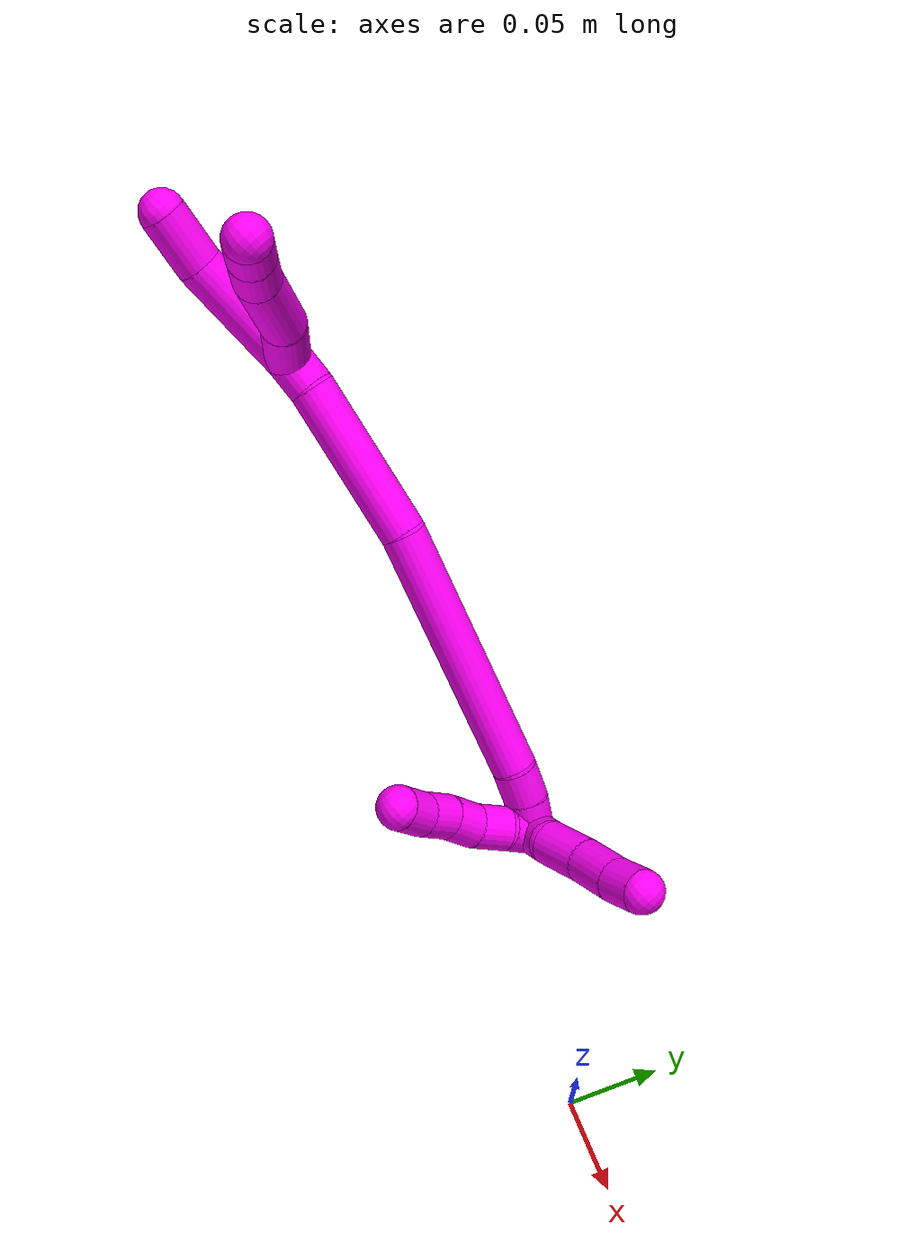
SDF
<sdf version="1.7">
 <world name="default">
  <model name="10">
   <static>0</static>
   <link name="10">
    <collision name="collision-cylinder-e_1_2_8">
     <pose>0.000802 0.022367 0.005993 -1.30899 0.034627 -0.026571</pose>
     <geometry><cylinder><radius>0.0125</radius><length>0.04634</length></cylinder></geometry>
     <surface>
      <friction><ode><mu>1.16</mu><mu2>1.16</mu2><slip1>0</slip1><slip2>0</slip2></ode></friction>
      <contact><ode><kp>1e+06</kp><kd>1</kd><max_vel>0</max_vel><min_depth>0.001</min_depth></ode></contact>
     </surface>
    </collision>
    <visual name="visual-cylinder-e_1_2_8">
     <pose>0.000802 0.022367 0.005993 -1.30899 0.034627 -0.026571</pose>
     <geometry><cylinder><radius>0.0125</radius><length>0.04634</length></cylinder></geometry>
     <material><ambient>1 0 0.964706 1</ambient></material>
    </visual>
    <collision name="collision-cylinder-e_2_8_9">
     <pose>0.005603 0.068957 0.022497 -1.1614 0.15029 -0.098721</pose>
     <geometry><cylinder><radius>0.0125</radius><length>0.053412</length></cylinder></geometry>
     <surface>
      <friction><ode><mu>1.16</mu><mu2>1.16</mu2><slip1>0</slip1><slip2>0</slip2></ode></friction>
      <contact><ode><kp>1e+06</kp><kd>1</kd><max_vel>0</max_vel><min_depth>0.001</min_depth></ode></contact>
     </surface>
    </collision>
    <visual name="visual-cylinder-e_2_8_9">
     <pose>0.005603 0.068957 0.022497 -1.1614 0.15029 -0.098721</pose>
     <geometry><cylinder><radius>0.0125</radius><length>0.053412</length></cylinder></geometry>
     <material><ambient>1 0 0.964706 1</ambient></material>
    </visual>
    <collision name="collision-cylinder-e_3_9_10">
     <pose>0.010865 0.106729 0.036566 -1.31397 0.089932 -0.069383</pose>
     <geometry><cylinder><radius>0.0125</radius><length>0.028131</length></cylinder></geometry>
     <surface>
      <friction><ode><mu>1.16</mu><mu2>1.16</mu2><slip1>0</slip1><slip2>0</slip2></ode></friction>
      <contact><ode><kp>1e+06</kp><kd>1</kd><max_vel>0</max_vel><min_depth>0.001</min_depth></ode></contact>
     </surface>
    </collision>
    <visual name="visual-cylinder-e_3_9_10">
     <pose>0.010865 0.106729 0.036566 -1.31397 0.089932 -0.069383</pose>
     <geometry><cylinder><radius>0.0125</radius><length>0.028131</length></cylinder></geometry>
     <material><ambient>1 0 0.964706 1</ambient></material>
    </visual>
    <collision name="collision-cylinder-e_4_10_6">
     <pose>0.013056 0.13098 0.042751 -1.3301 0.084016 -0.065903</pose>
     <geometry><cylinder><radius>0.0125</radius><length>0.022117</length></cylinder></geometry>
     <surface>
      <friction><ode><mu>1.16</mu><mu2>1.16</mu2><slip1>0</slip1><slip2>0</slip2></ode></friction>
      <contact><ode><kp>1e+06</kp><kd>1</kd><max_vel>0</max_vel><min_depth>0.001</min_depth></ode></contact>
     </surface>
    </collision>
    <visual name="visual-cylinder-e_4_10_6">
     <pose>0.013056 0.13098 0.042751 -1.3301 0.084016 -0.065903</pose>
     <geometry><cylinder><radius>0.0125</radius><length>0.022117</length></cylinder></geometry>
     <material><ambient>1 0 0.964706 1</ambient></material>
    </visual>
    <collision name="collision-cylinder-e_1_2_11">
     <pose>0.00258 0.00802 0.032405 -0.242624 0.077141 -0.009409</pose>
     <geometry><cylinder><radius>0.0125</radius><length>0.066964</length></cylinder></geometry>
     <surface>
      <friction><ode><mu>1.16</mu><mu2>1.16</mu2><slip1>0</slip1><slip2>0</slip2></ode></friction>
      <contact><ode><kp>1e+06</kp><kd>1</kd><max_vel>0</max_vel><min_depth>0.001</min_depth></ode></contact>
     </surface>
    </collision>
    <visual name="visual-cylinder-e_1_2_11">
     <pose>0.00258 0.00802 0.032405 -0.242624 0.077141 -0.009409</pose>
     <geometry><cylinder><radius>0.0125</radius><length>0.066964</length></cylinder></geometry>
     <material><ambient>1 0 0.964706 1</ambient></material>
    </visual>
    <collision name="collision-cylinder-e_2_11_5">
     <pose>0.004732 0.022361 0.080064 -0.392786 -0.025937 0.005161</pose>
     <geometry><cylinder><radius>0.0125</radius><length>0.033036</length></cylinder></geometry>
     <surface>
      <friction><ode><mu>1.16</mu><mu2>1.16</mu2><slip1>0</slip1><slip2>0</slip2></ode></friction>
      <contact><ode><kp>1e+06</kp><kd>1</kd><max_vel>0</max_vel><min_depth>0.001</min_depth></ode></contact>
     </surface>
    </collision>
    <visual name="visual-cylinder-e_2_11_5">
     <pose>0.004732 0.022361 0.080064 -0.392786 -0.025937 0.005161</pose>
     <geometry><cylinder><radius>0.0125</radius><length>0.033036</length></cylinder></geometry>
     <material><ambient>1 0 0.964706 1</ambient></material>
    </visual>
    <collision name="collision-cylinder-e_1_2_12">
     <pose>0.001084 0.001009 -0.010205 -3.04302 0.105337 -1.63727</pose>
     <geometry><cylinder><radius>0.0125</radius><length>0.020625</length></cylinder></geometry>
     <surface>
      <friction><ode><mu>1.16</mu><mu2>1.16</mu2><slip1>0</slip1><slip2>0</slip2></ode></friction>
      <contact><ode><kp>1e+06</kp><kd>1</kd><max_vel>0</max_vel><min_depth>0.001</min_depth></ode></contact>
     </surface>
    </collision>
    <visual name="visual-cylinder-e_1_2_12">
     <pose>0.001084 0.001009 -0.010205 -3.04302 0.105337 -1.63727</pose>
     <geometry><cylinder><radius>0.0125</radius><length>0.020625</length></cylinder></geometry>
     <material><ambient>1 0 0.964706 1</ambient></material>
    </visual>
    <collision name="collision-cylinder-e_2_12_13">
     <pose>0.010008 -0.000977 -0.064698 3.07406 0.174814 2.40573</pose>
     <geometry><cylinder><radius>0.0125</radius><length>0.090152</length></cylinder></geometry>
     <surface>
      <friction><ode><mu>1.16</mu><mu2>1.16</mu2><slip1>0</slip1><slip2>0</slip2></ode></friction>
      <contact><ode><kp>1e+06</kp><kd>1</kd><max_vel>0</max_vel><min_depth>0.001</min_depth></ode></contact>
     </surface>
    </collision>
    <visual name="visual-cylinder-e_2_12_13">
     <pose>0.010008 -0.000977 -0.064698 3.07406 0.174814 2.40573</pose>
     <geometry><cylinder><radius>0.0125</radius><length>0.090152</length></cylinder></geometry>
     <material><ambient>1 0 0.964706 1</ambient></material>
    </visual>
    <collision name="collision-cylinder-e_3_13_14">
     <pose>0.035984 -0.02036 -0.177624 2.90723 0.251559 1.64225</pose>
     <geometry><cylinder><radius>0.0125</radius><length>0.14572</length></cylinder></geometry>
     <surface>
      <friction><ode><mu>1.16</mu><mu2>1.16</mu2><slip1>0</slip1><slip2>0</slip2></ode></friction>
      <contact><ode><kp>1e+06</kp><kd>1</kd><max_vel>0</max_vel><min_depth>0.001</min_depth></ode></contact>
     </surface>
    </collision>
    <visual name="visual-cylinder-e_3_13_14">
     <pose>0.035984 -0.02036 -0.177624 2.90723 0.251559 1.64225</pose>
     <geometry><cylinder><radius>0.0125</radius><length>0.14572</length></cylinder></geometry>
     <material><ambient>1 0 0.964706 1</ambient></material>
    </visual>
    <collision name="collision-cylinder-e_4_14_15">
     <pose>0.056661 -0.041078 -0.255298 2.69465 0.248362 1.00452</pose>
     <geometry><cylinder><radius>0.0125</radius><length>0.020675</length></cylinder></geometry>
     <surface>
      <friction><ode><mu>1.16</mu><mu2>1.16</mu2><slip1>0</slip1><slip2>0</slip2></ode></friction>
      <contact><ode><kp>1e+06</kp><kd>1</kd><max_vel>0</max_vel><min_depth>0.001</min_depth></ode></contact>
     </surface>
    </collision>
    <visual name="visual-cylinder-e_4_14_15">
     <pose>0.056661 -0.041078 -0.255298 2.69465 0.248362 1.00452</pose>
     <geometry><cylinder><radius>0.0125</radius><length>0.020675</length></cylinder></geometry>
     <material><ambient>1 0 0.964706 1</ambient></material>
    </visual>
    <collision name="collision-cylinder-e_5_15_1">
     <pose>0.063445 -0.050462 -0.273648 2.64452 0.380851 1.29918</pose>
     <geometry><cylinder><radius>0.0125</radius><length>0.022828</length></cylinder></geometry>
     <surface>
      <friction><ode><mu>1.16</mu><mu2>1.16</mu2><slip1>0</slip1><slip2>0</slip2></ode></friction>
      <contact><ode><kp>1e+06</kp><kd>1</kd><max_vel>0</max_vel><min_depth>0.001</min_depth></ode></contact>
     </surface>
    </collision>
    <visual name="visual-cylinder-e_5_15_1">
     <pose>0.063445 -0.050462 -0.273648 2.64452 0.380851 1.29918</pose>
     <geometry><cylinder><radius>0.0125</radius><length>0.022828</length></cylinder></geometry>
     <material><ambient>1 0 0.964706 1</ambient></material>
    </visual>
    <collision name="collision-cylinder-e_1_1_16">
     <pose>0.073564 -0.051361 -0.276018 -0.539092 0.628107 -0.178987</pose>
     <geometry><cylinder><radius>0.0125</radius><length>0.02</length></cylinder></geometry>
     <surface>
      <friction><ode><mu>1.16</mu><mu2>1.16</mu2><slip1>0</slip1><slip2>0</slip2></ode></friction>
      <contact><ode><kp>1e+06</kp><kd>1</kd><max_vel>0</max_vel><min_depth>0.001</min_depth></ode></contact>
     </surface>
    </collision>
    <visual name="visual-cylinder-e_1_1_16">
     <pose>0.073564 -0.051361 -0.276018 -0.539092 0.628107 -0.178987</pose>
     <geometry><cylinder><radius>0.0125</radius><length>0.02</length></cylinder></geometry>
     <material><ambient>1 0 0.964706 1</ambient></material>
    </visual>
    <collision name="collision-cylinder-e_2_16_17">
     <pose>0.085851 -0.044912 -0.26175 -0.303712 0.695858 -0.110892</pose>
     <geometry><cylinder><radius>0.0125</radius><length>0.02</length></cylinder></geometry>
     <surface>
      <friction><ode><mu>1.16</mu><mu2>1.16</mu2><slip1>0</slip1><slip2>0</slip2></ode></friction>
      <contact><ode><kp>1e+06</kp><kd>1</kd><max_vel>0</max_vel><min_depth>0.001</min_depth></ode></contact>
     </surface>
    </collision>
    <visual name="visual-cylinder-e_2_16_17">
     <pose>0.085851 -0.044912 -0.26175 -0.303712 0.695858 -0.110892</pose>
     <geometry><cylinder><radius>0.0125</radius><length>0.02</length></cylinder></geometry>
     <material><ambient>1 0 0.964706 1</ambient></material>
    </visual>
    <collision name="collision-cylinder-e_3_17_18">
     <pose>0.096636 -0.038157 -0.246618 -0.518857 0.45283 -0.12213</pose>
     <geometry><cylinder><radius>0.0125</radius><length>0.02</length></cylinder></geometry>
     <surface>
      <friction><ode><mu>1.16</mu><mu2>1.16</mu2><slip1>0</slip1><slip2>0</slip2></ode></friction>
      <contact><ode><kp>1e+06</kp><kd>1</kd><max_vel>0</max_vel><min_depth>0.001</min_depth></ode></contact>
     </surface>
    </collision>
    <visual name="visual-cylinder-e_3_17_18">
     <pose>0.096636 -0.038157 -0.246618 -0.518857 0.45283 -0.12213</pose>
     <geometry><cylinder><radius>0.0125</radius><length>0.02</length></cylinder></geometry>
     <material><ambient>1 0 0.964706 1</ambient></material>
    </visual>
    <collision name="collision-cylinder-e_4_18_19">
     <pose>0.106606 -0.028436 -0.232405 -0.687809 0.593736 -0.218243</pose>
     <geometry><cylinder><radius>0.0125</radius><length>0.02</length></cylinder></geometry>
     <surface>
      <friction><ode><mu>1.16</mu><mu2>1.16</mu2><slip1>0</slip1><slip2>0</slip2></ode></friction>
      <contact><ode><kp>1e+06</kp><kd>1</kd><max_vel>0</max_vel><min_depth>0.001</min_depth></ode></contact>
     </surface>
    </collision>
    <visual name="visual-cylinder-e_4_18_19">
     <pose>0.106606 -0.028436 -0.232405 -0.687809 0.593736 -0.218243</pose>
     <geometry><cylinder><radius>0.0125</radius><length>0.02</length></cylinder></geometry>
     <material><ambient>1 0 0.964706 1</ambient></material>
    </visual>
    <collision name="collision-cylinder-e_5_19_4">
     <pose>0.116408 -0.01674 -0.219606 -0.78839 0.434281 -0.183028</pose>
     <geometry><cylinder><radius>0.0125</radius><length>0.02</length></cylinder></geometry>
     <surface>
      <friction><ode><mu>1.16</mu><mu2>1.16</mu2><slip1>0</slip1><slip2>0</slip2></ode></friction>
      <contact><ode><kp>1e+06</kp><kd>1</kd><max_vel>0</max_vel><min_depth>0.001</min_depth></ode></contact>
     </surface>
    </collision>
    <visual name="visual-cylinder-e_5_19_4">
     <pose>0.116408 -0.01674 -0.219606 -0.78839 0.434281 -0.183028</pose>
     <geometry><cylinder><radius>0.0125</radius><length>0.02</length></cylinder></geometry>
     <material><ambient>1 0 0.964706 1</ambient></material>
    </visual>
    <collision name="collision-cylinder-e_1_1_20">
     <pose>0.068351 -0.045066 -0.286279 -1.87823 0.060434 -0.082572</pose>
     <geometry><cylinder><radius>0.0125</radius><length>0.021965</length></cylinder></geometry>
     <surface>
      <friction><ode><mu>1.16</mu><mu2>1.16</mu2><slip1>0</slip1><slip2>0</slip2></ode></friction>
      <contact><ode><kp>1e+06</kp><kd>1</kd><max_vel>0</max_vel><min_depth>0.001</min_depth></ode></contact>
     </surface>
    </collision>
    <visual name="visual-cylinder-e_1_1_20">
     <pose>0.068351 -0.045066 -0.286279 -1.87823 0.060434 -0.082572</pose>
     <geometry><cylinder><radius>0.0125</radius><length>0.021965</length></cylinder></geometry>
     <material><ambient>1 0 0.964706 1</ambient></material>
    </visual>
    <collision name="collision-cylinder-e_2_20_21">
     <pose>0.067635 -0.022752 -0.297813 -2.17645 -0.095262 0.181477</pose>
     <geometry><cylinder><radius>0.0125</radius><length>0.028998</length></cylinder></geometry>
     <surface>
      <friction><ode><mu>1.16</mu><mu2>1.16</mu2><slip1>0</slip1><slip2>0</slip2></ode></friction>
      <contact><ode><kp>1e+06</kp><kd>1</kd><max_vel>0</max_vel><min_depth>0.001</min_depth></ode></contact>
     </surface>
    </collision>
    <visual name="visual-cylinder-e_2_20_21">
     <pose>0.067635 -0.022752 -0.297813 -2.17645 -0.095262 0.181477</pose>
     <geometry><cylinder><radius>0.0125</radius><length>0.028998</length></cylinder></geometry>
     <material><ambient>1 0 0.964706 1</ambient></material>
    </visual>
    <collision name="collision-cylinder-e_3_21_22">
     <pose>0.066206 0.00111 -0.31284 -2.0871 -0.003667 0.006298</pose>
     <geometry><cylinder><radius>0.0125</radius><length>0.027589</length></cylinder></geometry>
     <surface>
      <friction><ode><mu>1.16</mu><mu2>1.16</mu2><slip1>0</slip1><slip2>0</slip2></ode></friction>
      <contact><ode><kp>1e+06</kp><kd>1</kd><max_vel>0</max_vel><min_depth>0.001</min_depth></ode></contact>
     </surface>
    </collision>
    <visual name="visual-cylinder-e_3_21_22">
     <pose>0.066206 0.00111 -0.31284 -2.0871 -0.003667 0.006298</pose>
     <geometry><cylinder><radius>0.0125</radius><length>0.027589</length></cylinder></geometry>
     <material><ambient>1 0 0.964706 1</ambient></material>
    </visual>
    <collision name="collision-cylinder-e_4_22_3">
     <pose>0.065254 0.022691 -0.324375 -2.02886 -0.084128 0.135149</pose>
     <geometry><cylinder><radius>0.0125</radius><length>0.021449</length></cylinder></geometry>
     <surface>
      <friction><ode><mu>1.16</mu><mu2>1.16</mu2><slip1>0</slip1><slip2>0</slip2></ode></friction>
      <contact><ode><kp>1e+06</kp><kd>1</kd><max_vel>0</max_vel><min_depth>0.001</min_depth></ode></contact>
     </surface>
    </collision>
    <visual name="visual-cylinder-e_4_22_3">
     <pose>0.065254 0.022691 -0.324375 -2.02886 -0.084128 0.135149</pose>
     <geometry><cylinder><radius>0.0125</radius><length>0.021449</length></cylinder></geometry>
     <material><ambient>1 0 0.964706 1</ambient></material>
    </visual>
    <collision name="collision-sphere-3">
     <pose>0.064353 0.032276 -0.329101 0 -0 0</pose>
     <geometry><sphere><radius>0.0125</radius></sphere></geometry>
     <surface>
      <friction><ode><mu>1.16</mu><mu2>1.16</mu2><slip1>0</slip1><slip2>0</slip2></ode></friction>
      <contact><ode><kp>1e+06</kp><kd>1</kd><max_vel>0</max_vel><min_depth>0.001</min_depth></ode></contact>
     </surface>
    </collision>
    <visual name="visual-sphere-3">
     <pose>0.064353 0.032276 -0.329101 0 -0 0</pose>
     <geometry><sphere><radius>0.0125</radius></sphere></geometry>
     <material><ambient>1 0 0.964706 1</ambient></material>
    </visual>
    <collision name="collision-sphere-22">
     <pose>0.066155 0.013107 -0.31965 0 -0 0</pose>
     <geometry><sphere><radius>0.0125</radius></sphere></geometry>
     <surface>
      <friction><ode><mu>1.16</mu><mu2>1.16</mu2><slip1>0</slip1><slip2>0</slip2></ode></friction>
      <contact><ode><kp>1e+06</kp><kd>1</kd><max_vel>0</max_vel><min_depth>0.001</min_depth></ode></contact>
     </surface>
    </collision>
    <visual name="visual-sphere-22">
     <pose>0.066155 0.013107 -0.31965 0 -0 0</pose>
     <geometry><sphere><radius>0.0125</radius></sphere></geometry>
     <material><ambient>1 0 0.964706 1</ambient></material>
    </visual>
    <collision name="collision-sphere-21">
     <pose>0.066256 -0.010886 -0.30603 0 -0 0</pose>
     <geometry><sphere><radius>0.0125</radius></sphere></geometry>
     <surface>
      <friction><ode><mu>1.16</mu><mu2>1.16</mu2><slip1>0</slip1><slip2>0</slip2></ode></friction>
      <contact><ode><kp>1e+06</kp><kd>1</kd><max_vel>0</max_vel><min_depth>0.001</min_depth></ode></contact>
     </surface>
    </collision>
    <visual name="visual-sphere-21">
     <pose>0.066256 -0.010886 -0.30603 0 -0 0</pose>
     <geometry><sphere><radius>0.0125</radius></sphere></geometry>
     <material><ambient>1 0 0.964706 1</ambient></material>
    </visual>
    <collision name="collision-sphere-20">
     <pose>0.069014 -0.034617 -0.289597 0 -0 0</pose>
     <geometry><sphere><radius>0.0125</radius></sphere></geometry>
     <surface>
      <friction><ode><mu>1.16</mu><mu2>1.16</mu2><slip1>0</slip1><slip2>0</slip2></ode></friction>
      <contact><ode><kp>1e+06</kp><kd>1</kd><max_vel>0</max_vel><min_depth>0.001</min_depth></ode></contact>
     </surface>
    </collision>
    <visual name="visual-sphere-20">
     <pose>0.069014 -0.034617 -0.289597 0 -0 0</pose>
     <geometry><sphere><radius>0.0125</radius></sphere></geometry>
     <material><ambient>1 0 0.964706 1</ambient></material>
    </visual>
    <collision name="collision-sphere-4">
     <pose>0.120616 -0.010306 -0.21321 0 -0 0</pose>
     <geometry><sphere><radius>0.0125</radius></sphere></geometry>
     <surface>
      <friction><ode><mu>1.16</mu><mu2>1.16</mu2><slip1>0</slip1><slip2>0</slip2></ode></friction>
      <contact><ode><kp>1e+06</kp><kd>1</kd><max_vel>0</max_vel><min_depth>0.001</min_depth></ode></contact>
     </surface>
    </collision>
    <visual name="visual-sphere-4">
     <pose>0.120616 -0.010306 -0.21321 0 -0 0</pose>
     <geometry><sphere><radius>0.0125</radius></sphere></geometry>
     <material><ambient>1 0 0.964706 1</ambient></material>
    </visual>
    <collision name="collision-sphere-11">
     <pose>0.005161 0.01604 0.064809 0 -0 0</pose>
     <geometry><sphere><radius>0.0125</radius></sphere></geometry>
     <surface>
      <friction><ode><mu>1.16</mu><mu2>1.16</mu2><slip1>0</slip1><slip2>0</slip2></ode></friction>
      <contact><ode><kp>1e+06</kp><kd>1</kd><max_vel>0</max_vel><min_depth>0.001</min_depth></ode></contact>
     </surface>
    </collision>
    <visual name="visual-sphere-11">
     <pose>0.005161 0.01604 0.064809 0 -0 0</pose>
     <geometry><sphere><radius>0.0125</radius></sphere></geometry>
     <material><ambient>1 0 0.964706 1</ambient></material>
    </visual>
    <collision name="collision-sphere-6">
     <pose>0.013984 0.141682 0.045378 0 -0 0</pose>
     <geometry><sphere><radius>0.0125</radius></sphere></geometry>
     <surface>
      <friction><ode><mu>1.16</mu><mu2>1.16</mu2><slip1>0</slip1><slip2>0</slip2></ode></friction>
      <contact><ode><kp>1e+06</kp><kd>1</kd><max_vel>0</max_vel><min_depth>0.001</min_depth></ode></contact>
     </surface>
    </collision>
    <visual name="visual-sphere-6">
     <pose>0.013984 0.141682 0.045378 0 -0 0</pose>
     <geometry><sphere><radius>0.0125</radius></sphere></geometry>
     <material><ambient>1 0 0.964706 1</ambient></material>
    </visual>
    <collision name="collision-sphere-10">
     <pose>0.012128 0.120278 0.040125 0 -0 0</pose>
     <geometry><sphere><radius>0.0125</radius></sphere></geometry>
     <surface>
      <friction><ode><mu>1.16</mu><mu2>1.16</mu2><slip1>0</slip1><slip2>0</slip2></ode></friction>
      <contact><ode><kp>1e+06</kp><kd>1</kd><max_vel>0</max_vel><min_depth>0.001</min_depth></ode></contact>
     </surface>
    </collision>
    <visual name="visual-sphere-10">
     <pose>0.012128 0.120278 0.040125 0 -0 0</pose>
     <geometry><sphere><radius>0.0125</radius></sphere></geometry>
     <material><ambient>1 0 0.964706 1</ambient></material>
    </visual>
    <collision name="collision-sphere-9">
     <pose>0.009601 0.09318 0.033008 0 -0 0</pose>
     <geometry><sphere><radius>0.0125</radius></sphere></geometry>
     <surface>
      <friction><ode><mu>1.16</mu><mu2>1.16</mu2><slip1>0</slip1><slip2>0</slip2></ode></friction>
      <contact><ode><kp>1e+06</kp><kd>1</kd><max_vel>0</max_vel><min_depth>0.001</min_depth></ode></contact>
     </surface>
    </collision>
    <visual name="visual-sphere-9">
     <pose>0.009601 0.09318 0.033008 0 -0 0</pose>
     <geometry><sphere><radius>0.0125</radius></sphere></geometry>
     <material><ambient>1 0 0.964706 1</ambient></material>
    </visual>
    <collision name="collision-sphere-2">
     <geometry><sphere><radius>0.0125</radius></sphere></geometry>
     <surface>
      <friction><ode><mu>1.16</mu><mu2>1.16</mu2><slip1>0</slip1><slip2>0</slip2></ode></friction>
      <contact><ode><kp>1e+06</kp><kd>1</kd><max_vel>0</max_vel><min_depth>0.001</min_depth></ode></contact>
     </surface>
    </collision>
    <visual name="visual-sphere-2">
     <geometry><sphere><radius>0.0125</radius></sphere></geometry>
     <material><ambient>1 0 0.964706 1</ambient></material>
    </visual>
    <collision name="collision-sphere-19">
     <pose>0.1122 -0.023174 -0.226001 0 -0 0</pose>
     <geometry><sphere><radius>0.0125</radius></sphere></geometry>
     <surface>
      <friction><ode><mu>1.16</mu><mu2>1.16</mu2><slip1>0</slip1><slip2>0</slip2></ode></friction>
      <contact><ode><kp>1e+06</kp><kd>1</kd><max_vel>0</max_vel><min_depth>0.001</min_depth></ode></contact>
     </surface>
    </collision>
    <visual name="visual-sphere-19">
     <pose>0.1122 -0.023174 -0.226001 0 -0 0</pose>
     <geometry><sphere><radius>0.0125</radius></sphere></geometry>
     <material><ambient>1 0 0.964706 1</ambient></material>
    </visual>
    <collision name="collision-sphere-8">
     <pose>0.001604 0.044734 0.011987 0 -0 0</pose>
     <geometry><sphere><radius>0.0125</radius></sphere></geometry>
     <surface>
      <friction><ode><mu>1.16</mu><mu2>1.16</mu2><slip1>0</slip1><slip2>0</slip2></ode></friction>
      <contact><ode><kp>1e+06</kp><kd>1</kd><max_vel>0</max_vel><min_depth>0.001</min_depth></ode></contact>
     </surface>
    </collision>
    <visual name="visual-sphere-8">
     <pose>0.001604 0.044734 0.011987 0 -0 0</pose>
     <geometry><sphere><radius>0.0125</radius></sphere></geometry>
     <material><ambient>1 0 0.964706 1</ambient></material>
    </visual>
    <collision name="collision-sphere-5">
     <pose>0.004304 0.028681 0.095319 0 -0 0</pose>
     <geometry><sphere><radius>0.0125</radius></sphere></geometry>
     <surface>
      <friction><ode><mu>1.16</mu><mu2>1.16</mu2><slip1>0</slip1><slip2>0</slip2></ode></friction>
      <contact><ode><kp>1e+06</kp><kd>1</kd><max_vel>0</max_vel><min_depth>0.001</min_depth></ode></contact>
     </surface>
    </collision>
    <visual name="visual-sphere-5">
     <pose>0.004304 0.028681 0.095319 0 -0 0</pose>
     <geometry><sphere><radius>0.0125</radius></sphere></geometry>
     <material><ambient>1 0 0.964706 1</ambient></material>
    </visual>
    <collision name="collision-sphere-12">
     <pose>0.002169 0.002018 -0.020411 0 -0 0</pose>
     <geometry><sphere><radius>0.0125</radius></sphere></geometry>
     <surface>
      <friction><ode><mu>1.16</mu><mu2>1.16</mu2><slip1>0</slip1><slip2>0</slip2></ode></friction>
      <contact><ode><kp>1e+06</kp><kd>1</kd><max_vel>0</max_vel><min_depth>0.001</min_depth></ode></contact>
     </surface>
    </collision>
    <visual name="visual-sphere-12">
     <pose>0.002169 0.002018 -0.020411 0 -0 0</pose>
     <geometry><sphere><radius>0.0125</radius></sphere></geometry>
     <material><ambient>1 0 0.964706 1</ambient></material>
    </visual>
    <collision name="collision-sphere-13">
     <pose>0.017848 -0.003973 -0.108986 0 -0 0</pose>
     <geometry><sphere><radius>0.0125</radius></sphere></geometry>
     <surface>
      <friction><ode><mu>1.16</mu><mu2>1.16</mu2><slip1>0</slip1><slip2>0</slip2></ode></friction>
      <contact><ode><kp>1e+06</kp><kd>1</kd><max_vel>0</max_vel><min_depth>0.001</min_depth></ode></contact>
     </surface>
    </collision>
    <visual name="visual-sphere-13">
     <pose>0.017848 -0.003973 -0.108986 0 -0 0</pose>
     <geometry><sphere><radius>0.0125</radius></sphere></geometry>
     <material><ambient>1 0 0.964706 1</ambient></material>
    </visual>
    <collision name="collision-sphere-14">
     <pose>0.05412 -0.036747 -0.246262 0 -0 0</pose>
     <geometry><sphere><radius>0.0125</radius></sphere></geometry>
     <surface>
      <friction><ode><mu>1.16</mu><mu2>1.16</mu2><slip1>0</slip1><slip2>0</slip2></ode></friction>
      <contact><ode><kp>1e+06</kp><kd>1</kd><max_vel>0</max_vel><min_depth>0.001</min_depth></ode></contact>
     </surface>
    </collision>
    <visual name="visual-sphere-14">
     <pose>0.05412 -0.036747 -0.246262 0 -0 0</pose>
     <geometry><sphere><radius>0.0125</radius></sphere></geometry>
     <material><ambient>1 0 0.964706 1</ambient></material>
    </visual>
    <collision name="collision-sphere-15">
     <pose>0.059202 -0.045409 -0.264334 0 -0 0</pose>
     <geometry><sphere><radius>0.0125</radius></sphere></geometry>
     <surface>
      <friction><ode><mu>1.16</mu><mu2>1.16</mu2><slip1>0</slip1><slip2>0</slip2></ode></friction>
      <contact><ode><kp>1e+06</kp><kd>1</kd><max_vel>0</max_vel><min_depth>0.001</min_depth></ode></contact>
     </surface>
    </collision>
    <visual name="visual-sphere-15">
     <pose>0.059202 -0.045409 -0.264334 0 -0 0</pose>
     <geometry><sphere><radius>0.0125</radius></sphere></geometry>
     <material><ambient>1 0 0.964706 1</ambient></material>
    </visual>
    <collision name="collision-sphere-1">
     <pose>0.067688 -0.055514 -0.282962 0 -0 0</pose>
     <geometry><sphere><radius>0.0125</radius></sphere></geometry>
     <surface>
      <friction><ode><mu>1.16</mu><mu2>1.16</mu2><slip1>0</slip1><slip2>0</slip2></ode></friction>
      <contact><ode><kp>1e+06</kp><kd>1</kd><max_vel>0</max_vel><min_depth>0.001</min_depth></ode></contact>
     </surface>
    </collision>
    <visual name="visual-sphere-1">
     <pose>0.067688 -0.055514 -0.282962 0 -0 0</pose>
     <geometry><sphere><radius>0.0125</radius></sphere></geometry>
     <material><ambient>1 0 0.964706 1</ambient></material>
    </visual>
    <collision name="collision-sphere-18">
     <pose>0.101011 -0.033698 -0.238809 0 -0 0</pose>
     <geometry><sphere><radius>0.0125</radius></sphere></geometry>
     <surface>
      <friction><ode><mu>1.16</mu><mu2>1.16</mu2><slip1>0</slip1><slip2>0</slip2></ode></friction>
      <contact><ode><kp>1e+06</kp><kd>1</kd><max_vel>0</max_vel><min_depth>0.001</min_depth></ode></contact>
     </surface>
    </collision>
    <visual name="visual-sphere-18">
     <pose>0.101011 -0.033698 -0.238809 0 -0 0</pose>
     <geometry><sphere><radius>0.0125</radius></sphere></geometry>
     <material><ambient>1 0 0.964706 1</ambient></material>
    </visual>
    <collision name="collision-sphere-16">
     <pose>0.07944 -0.047207 -0.269074 0 -0 0</pose>
     <geometry><sphere><radius>0.0125</radius></sphere></geometry>
     <surface>
      <friction><ode><mu>1.16</mu><mu2>1.16</mu2><slip1>0</slip1><slip2>0</slip2></ode></friction>
      <contact><ode><kp>1e+06</kp><kd>1</kd><max_vel>0</max_vel><min_depth>0.001</min_depth></ode></contact>
     </surface>
    </collision>
    <visual name="visual-sphere-16">
     <pose>0.07944 -0.047207 -0.269074 0 -0 0</pose>
     <geometry><sphere><radius>0.0125</radius></sphere></geometry>
     <material><ambient>1 0 0.964706 1</ambient></material>
    </visual>
    <collision name="collision-sphere-17">
     <pose>0.092261 -0.042616 -0.254427 0 -0 0</pose>
     <geometry><sphere><radius>0.0125</radius></sphere></geometry>
     <surface>
      <friction><ode><mu>1.16</mu><mu2>1.16</mu2><slip1>0</slip1><slip2>0</slip2></ode></friction>
      <contact><ode><kp>1e+06</kp><kd>1</kd><max_vel>0</max_vel><min_depth>0.001</min_depth></ode></contact>
     </surface>
    </collision>
    <visual name="visual-sphere-17">
     <pose>0.092261 -0.042616 -0.254427 0 -0 0</pose>
     <geometry><sphere><radius>0.0125</radius></sphere></geometry>
     <material><ambient>1 0 0.964706 1</ambient></material>
    </visual>
    <inertial>
     <pose>0.035091 0.002847 -0.120565 0 -0 0</pose>
     <mass>0.75</mass>
     <inertia>
      <ixx>0.000319</ixx>
      <ixy>0</ixy>
      <ixz>0</ixz>
      <iyy>0.000439</iyy>
      <iyz>0</iyz>
      <izz>-7.8e-05</izz>
     </inertia>
    </inertial>
   </link>
   <pose>-0.378242 -0.014 0.196498 1.13793 0.128367 -1.15721</pose>
  </model>
 </world>
</sdf>
